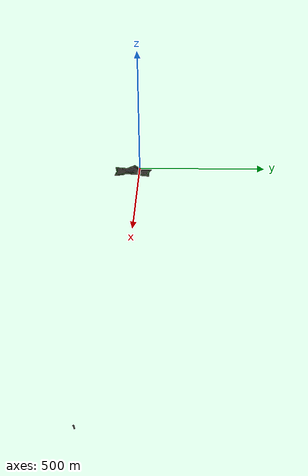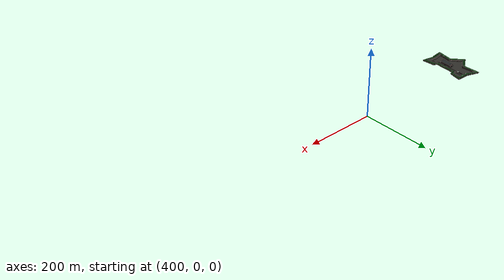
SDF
<sdf version="1.4">
 <world name="default">
  <light name="sun" type="directional">
   <pose>0 0 10 0 -0 0</pose>
   <diffuse>0.8 0.8 0.8 1</diffuse>
   <specular>0.2 0.2 0.2 1</specular>
   <attenuation>
    <range>1000</range>
    <constant>0.9</constant>
    <linear>0.01</linear>
    <quadratic>0.001</quadratic>
   </attenuation>
   <direction>-0.5 0.1 -0.9</direction>
  </light>
  <model name="my_mesh">
   <pose>120 -70 -2.5 1.54 5.55112e-17 1.54</pose>
   <static>1</static>
   <link name="body">
    <visual name="visual">
     <geometry>
      <mesh>
       <uri>file:///home/rohan/work_workspace/src/Simulator/spiri_description/meshes/test_scale.dae</uri>
      </mesh>
     </geometry>
    </visual>
    <velocity_decay><linear>0</linear><angular>0</angular></velocity_decay>
   </link>
  </model>
  <physics type="ode">
   <max_step_size>0.001</max_step_size>
   <real_time_factor>1</real_time_factor>
   <real_time_update_rate>1000</real_time_update_rate>
   <gravity>0 0 -9.8</gravity>
  </physics>
  <scene><ambient>0.4 0.4 0.4 1</ambient><background>0.7 0.7 0.7 1</background><shadows>1</shadows></scene>
 </world>
</sdf>
